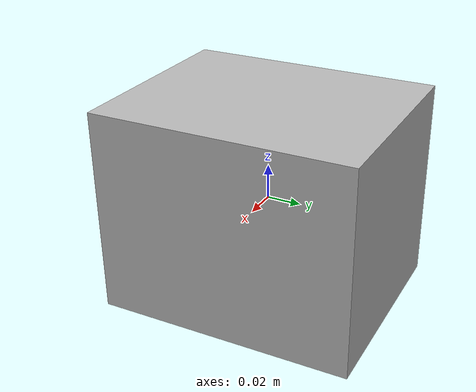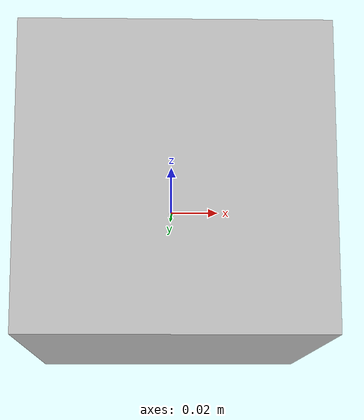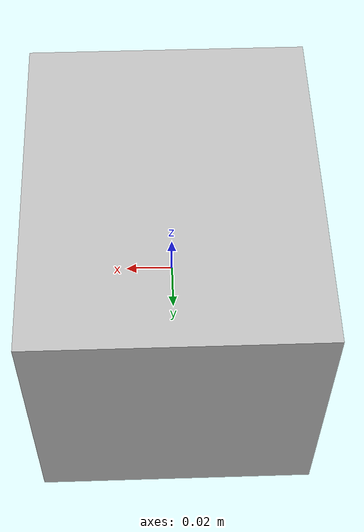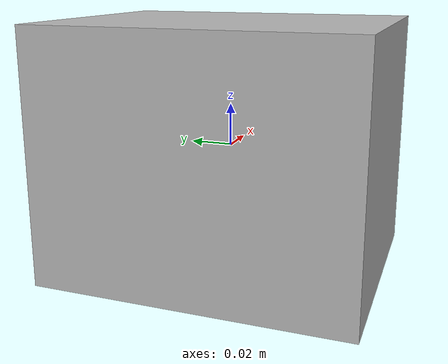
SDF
<?xml version="1.0"?>
<sdf version="1.6">
  <model name="sema_little_box">
    <link name="sema_little_box_link">
      <visual name="sema_little_box_visual">
        <pose>0 0 0 0 0 0</pose>
        <geometry>
          <mesh>
            <uri>model://sema_little_box/mesh/sema_little_box.dae</uri>
          </mesh>
        </geometry>
        <origin xyz="0 0 0" rpy="0 0 0"/>
      </visual>
      <collision name="sema_little_box_collision">
        <geometry>
          <box>
            <size>0.12 0.15 0.12</size>
          </box>
        </geometry>
        <surface>
          <friction>
            <ode>
              <mu>100.0</mu>
              <mu2>100.0</mu2>
            </ode>
          </friction>
        </surface>
      </collision>
      <inertial>
        <mass>0.5</mass>
        <inertia>
          <ixx>0.00154</ixx>
          <iyy>0.00120</iyy>
          <izz>0.00154</izz>
          <ixy>0</ixy>
          <ixz>0</ixz>
          <iyz>0</iyz>
        </inertia>
      </inertial>
    </link>
  </model>
</sdf>
